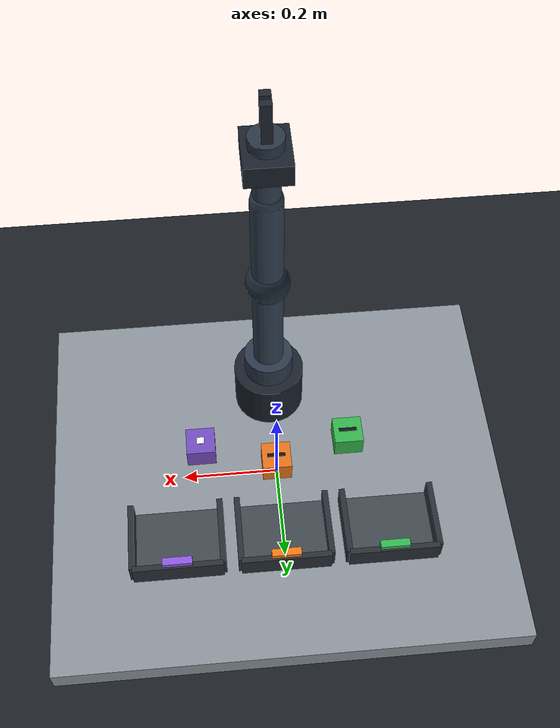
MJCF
<mujoco model="smartpick_sorting_cell">
  <compiler angle="radian" autolimits="true"/>
  <option timestep="0.002" gravity="0 0 -9.81" integrator="implicitfast" cone="elliptic" iterations="50"/>
  <size njmax="1200" nconmax="300"/>
  <visual>
    <global offwidth="192" offheight="192"/>
    <quality shadowsize="2048"/>
    <map znear="0.01" zfar="5"/>
  </visual>

  <default>
    <geom condim="4" friction="0.9 0.02 0.002" solref="0.008 1" solimp="0.95 0.99 0.002"/>
    <joint damping="1.2" armature="0.03"/>
    <default class="arm">
      <geom type="capsule" size="0.032" rgba="0.19 0.25 0.32 1" mass="0.7"/>
    </default>
    <default class="finger">
      <joint type="slide" damping="0.8" armature="0.01" range="0 0.032"/>
      <geom type="box" size="0.010 0.008 0.044" rgba="0.12 0.14 0.18 1" mass="0.06" friction="1.8 0.03 0.003"/>
    </default>
    <default class="object">
      <geom type="box" size="0.031 0.031 0.024" mass="0.07" friction="1.1 0.02 0.002"/>
    </default>
  </default>

  <asset>
    <texture name="floor_tex" type="2d" builtin="checker" rgb1="0.09 0.11 0.13" rgb2="0.13 0.15 0.17" width="256" height="256"/>
    <material name="floor_mat" texture="floor_tex" texrepeat="4 4" reflectance="0.05"/>
    <material name="table_mat" rgba="0.55 0.58 0.61 1" reflectance="0.08"/>
  </asset>

  <worldbody>
    <light name="key" pos="-0.4 -0.4 1.2" dir="0.3 0.2 -1" diffuse="0.85 0.85 0.85" castshadow="true"/>
    <light name="fill" pos="0.6 0.2 0.8" dir="-0.4 -0.2 -1" diffuse="0.35 0.38 0.42"/>
    <camera name="top" pos="0 -0.02 1.18" quat="1 0 0 0" fovy="40"/>
    <camera name="oblique" pos="0.72 -0.82 0.78" xyaxes="0.75 0.66 0 -0.34 0.39 0.86" fovy="48"/>

    <geom name="floor" type="plane" size="2 2 0.1" pos="0 0 -0.055" material="floor_mat"/>
    <geom name="table" type="box" size="0.48 0.42 0.025" pos="0 0 -0.027" material="table_mat" friction="0.9 0.02 0.002"/>

    <!-- Three semantic destination trays: accepted, scratch, and unknown. -->
    <body name="accepted_bin" pos="-0.22 0.16 0.006">
      <geom name="accepted_bin_bottom" type="box" size="0.092 0.072 0.006" rgba="0.25 0.28 0.31 1"/>
      <geom name="accepted_bin_back" type="box" pos="0 0.072 0.025" size="0.092 0.006 0.025" rgba="0.16 0.18 0.21 1"/>
      <geom name="accepted_bin_left" type="box" pos="-0.092 0 0.025" size="0.006 0.072 0.025" rgba="0.16 0.18 0.21 1"/>
      <geom name="accepted_bin_right" type="box" pos="0.092 0 0.025" size="0.006 0.072 0.025" rgba="0.16 0.18 0.21 1"/>
      <geom name="accepted_bin_label" type="box" pos="0 0.066 0.054" size="0.030 0.008 0.007" rgba="0.20 0.72 0.32 1" contype="0" conaffinity="0"/>
      <site name="accepted_bin_site" pos="0 0 0.055" size="0.004" rgba="0 1 0 0"/>
    </body>
    <body name="scratch_bin" pos="0 0.16 0.006">
      <geom name="scratch_bin_bottom" type="box" size="0.092 0.072 0.006" rgba="0.25 0.28 0.31 1"/>
      <geom name="scratch_bin_back" type="box" pos="0 0.072 0.025" size="0.092 0.006 0.025" rgba="0.16 0.18 0.21 1"/>
      <geom name="scratch_bin_left" type="box" pos="-0.092 0 0.025" size="0.006 0.072 0.025" rgba="0.16 0.18 0.21 1"/>
      <geom name="scratch_bin_right" type="box" pos="0.092 0 0.025" size="0.006 0.072 0.025" rgba="0.16 0.18 0.21 1"/>
      <geom name="scratch_bin_label" type="box" pos="0 0.066 0.054" size="0.030 0.008 0.007" rgba="0.95 0.48 0.08 1" contype="0" conaffinity="0"/>
      <site name="scratch_bin_site" pos="0 0 0.055" size="0.004" rgba="1 0.4 0 0"/>
    </body>
    <body name="unknown_bin" pos="0.22 0.16 0.006">
      <geom name="unknown_bin_bottom" type="box" size="0.092 0.072 0.006" rgba="0.25 0.28 0.31 1"/>
      <geom name="unknown_bin_back" type="box" pos="0 0.072 0.025" size="0.092 0.006 0.025" rgba="0.16 0.18 0.21 1"/>
      <geom name="unknown_bin_left" type="box" pos="-0.092 0 0.025" size="0.006 0.072 0.025" rgba="0.16 0.18 0.21 1"/>
      <geom name="unknown_bin_right" type="box" pos="0.092 0 0.025" size="0.006 0.072 0.025" rgba="0.16 0.18 0.21 1"/>
      <geom name="unknown_bin_label" type="box" pos="0 0.066 0.054" size="0.030 0.008 0.007" rgba="0.55 0.35 0.90 1" contype="0" conaffinity="0"/>
      <site name="unknown_bin_site" pos="0 0 0.055" size="0.004" rgba="0.5 0 1 0"/>
    </body>

    <!-- Primitive-only five-axis arm. The policy commands Cartesian xyz/yaw deltas. -->
    <body name="robot_base" pos="0 -0.20 0.0">
      <geom name="base_geom" type="cylinder" size="0.075 0.055" pos="0 0 0.055" rgba="0.10 0.13 0.17 1" mass="2.5" contype="0" conaffinity="0"/>
      <body name="shoulder_yaw" pos="0 0 0.105">
        <joint name="joint_base_yaw" type="hinge" axis="0 0 1" range="-2.75 2.75"/>
        <geom name="shoulder_geom" type="cylinder" size="0.052 0.055" rgba="0.17 0.22 0.29 1" mass="1.0" contype="0" conaffinity="0"/>
        <body name="upper_arm" pos="0 0 0.045">
          <joint name="joint_shoulder" type="hinge" axis="1 0 0" range="-2.15 1.15"/>
          <geom name="upper_arm_geom" class="arm" fromto="0 0 0 0 0 0.245"/>
          <body name="forearm" pos="0 0 0.245">
            <joint name="joint_elbow" type="hinge" axis="1 0 0" range="-2.55 2.35"/>
            <geom name="elbow_geom" type="sphere" size="0.045" rgba="0.12 0.17 0.23 1" mass="0.35"/>
            <geom name="forearm_geom" class="arm" fromto="0 0 0 0 0 0.225"/>
            <body name="wrist_pitch" pos="0 0 0.225">
              <joint name="joint_wrist_pitch" type="hinge" axis="1 0 0" range="-2.75 2.75"/>
              <geom name="wrist_link_geom" class="arm" size="0.027" fromto="0 0 0 0 0 0.105" mass="0.35"/>
              <body name="hand" pos="0 0 0.105">
                <joint name="joint_wrist_yaw" type="hinge" axis="0 0 1" range="-3.0 3.0" damping="0.5"/>
                <geom name="palm_geom" type="box" size="0.044 0.052 0.022" rgba="0.10 0.13 0.17 1" mass="0.25"/>
                <body name="wrist_roll" pos="0 0 0">
                  <!-- Sixth axis is optional at the environment interface. Keeping the
                       tool point on this axis preserves legacy five-axis trajectories. -->
                  <joint name="joint_wrist_roll" type="hinge" axis="0 0 1" range="-3.0 3.0" damping="0.45"/>
                  <geom name="wrist_roll_geom" type="cylinder" size="0.033 0.020" pos="0 0 0.024" rgba="0.16 0.21 0.27 1" mass="0.10"/>
                  <site name="grip_site" pos="0 0 0.065" size="0.008" rgba="0.1 0.8 1 0.35"/>
                  <camera name="wrist" pos="0 0 0.072" euler="3.141593 0 0" fovy="72"/>
                  <body name="left_finger" pos="0 0.012 0.055">
                    <joint name="left_finger_joint" class="finger" axis="0 1 0"/>
                    <geom name="left_finger_geom" class="finger" pos="0 0 0.025"/>
                  </body>
                  <body name="right_finger" pos="0 -0.012 0.055">
                    <joint name="right_finger_joint" class="finger" axis="0 -1 0"/>
                    <geom name="right_finger_geom" class="finger" pos="0 0 0.025"/>
                  </body>
                </body>
              </body>
            </body>
          </body>
        </body>
      </body>
    </body>

    <body name="obj0" pos="-0.16 -0.06 0.026">
      <freejoint name="obj0_free"/>
      <geom name="obj0_geom" class="object" rgba="0.2 0.7 0.3 1"/>
      <geom name="obj0_mark" type="box" pos="0 0 0.023" size="0.019 0.004 0.002" rgba="0.05 0.08 0.10 1" mass="0.001"/>
    </body>
    <body name="obj1" pos="0 -0.01 0.026">
      <freejoint name="obj1_free"/>
      <geom name="obj1_geom" class="object" rgba="0.9 0.45 0.1 1"/>
      <geom name="obj1_mark" type="box" pos="0 0 0.023" size="0.019 0.004 0.002" rgba="0.05 0.08 0.10 1" mass="0.001"/>
    </body>
    <body name="obj2" pos="0.16 -0.06 0.026">
      <freejoint name="obj2_free"/>
      <geom name="obj2_geom" class="object" rgba="0.45 0.3 0.75 1"/>
      <geom name="obj2_mark" type="box" pos="0 0 0.023" size="0.008 0.008 0.002" rgba="0.95 0.95 0.95 1" mass="0.001"/>
    </body>
  </worldbody>

  <equality>
    <weld name="grasp_obj0" body1="wrist_roll" body2="obj0" relpose="0 0 0.078 1 0 0 0" active="false" solref="0.004 1"/>
    <weld name="grasp_obj1" body1="wrist_roll" body2="obj1" relpose="0 0 0.078 1 0 0 0" active="false" solref="0.004 1"/>
    <weld name="grasp_obj2" body1="wrist_roll" body2="obj2" relpose="0 0 0.078 1 0 0 0" active="false" solref="0.004 1"/>
  </equality>

  <actuator>
    <position name="base_yaw_act" joint="joint_base_yaw" kp="180" kv="18" ctrlrange="-2.75 2.75"/>
    <position name="shoulder_act" joint="joint_shoulder" kp="220" kv="22" ctrlrange="-2.15 1.15"/>
    <position name="elbow_act" joint="joint_elbow" kp="180" kv="18" ctrlrange="-2.55 2.35"/>
    <position name="wrist_pitch_act" joint="joint_wrist_pitch" kp="100" kv="10" ctrlrange="-2.75 2.75"/>
    <position name="wrist_yaw_act" joint="joint_wrist_yaw" kp="70" kv="7" ctrlrange="-3 3"/>
    <position name="wrist_roll_act" joint="joint_wrist_roll" kp="55" kv="6" ctrlrange="-3 3"/>
    <position name="left_finger_act" joint="left_finger_joint" kp="90" kv="5" ctrlrange="0 0.032"/>
    <position name="right_finger_act" joint="right_finger_joint" kp="90" kv="5" ctrlrange="0 0.032"/>
  </actuator>

  <keyframe>
    <key name="home" qpos="1.5 -0.2 -1.8 -1.142 0 0 0.028 0.028 -0.16 -0.06 0.026 1 0 0 0 0 -0.01 0.026 1 0 0 0 0.16 -0.06 0.026 1 0 0 0" ctrl="1.5 -0.2 -1.8 -1.142 0 0 0.028 0.028"/>
  </keyframe>
</mujoco>
